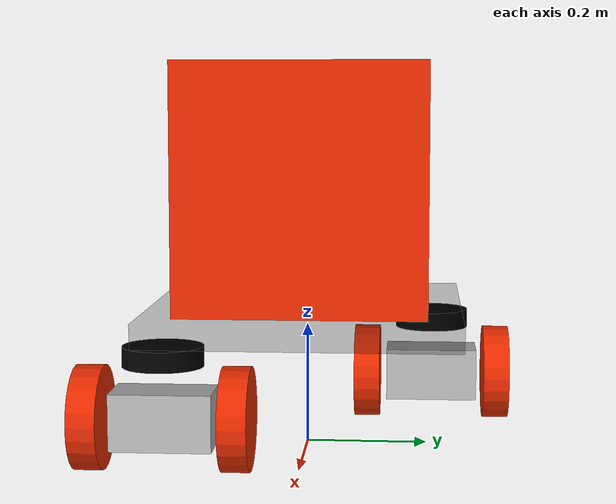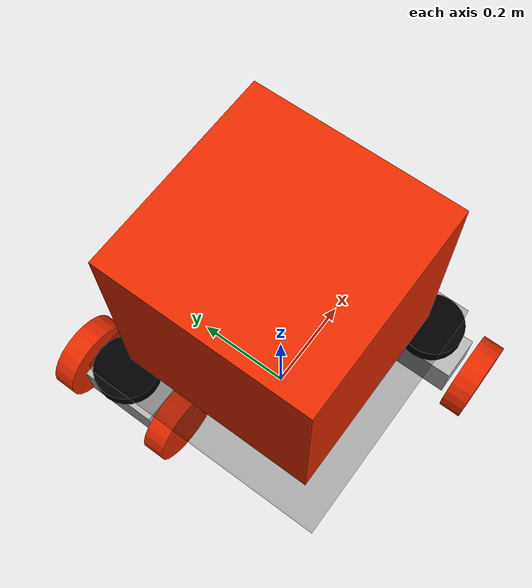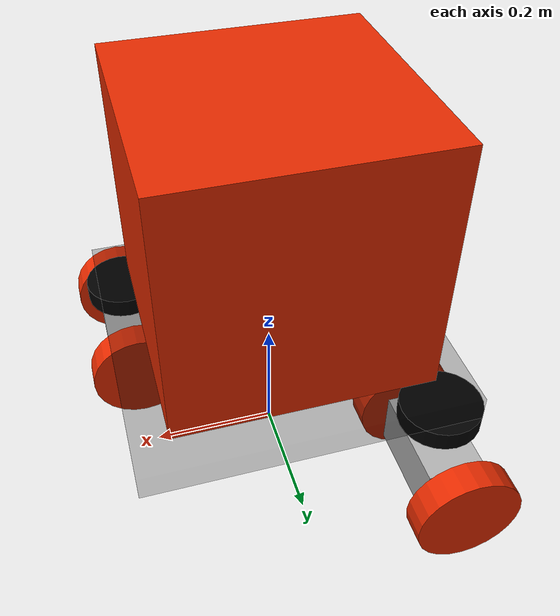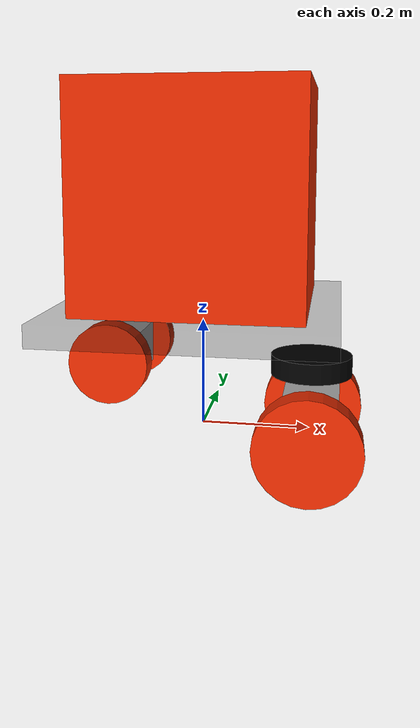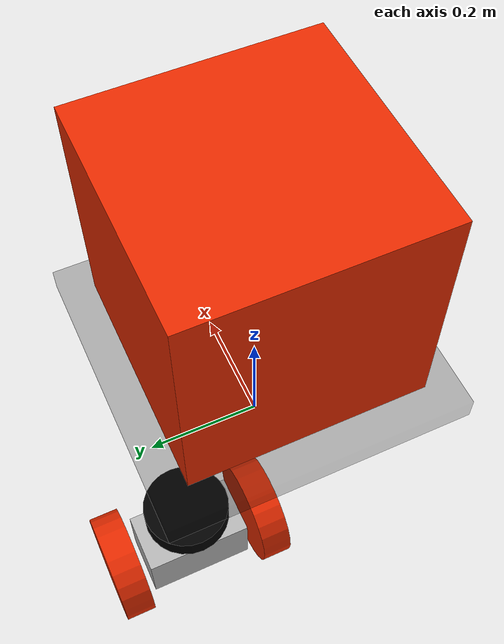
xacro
<?xml version="1.0"?>
<robot xmlns:xacro="http://www.ros.org/wiki/xacro" name="amr">
  <xacro:arg name="name" default="amr"/>
  <xacro:arg name="namespace" default=""/>
  <xacro:arg name="prefix" default=""/>
  <xacro:arg name="serial_port" default="/dev/ttyACM0"/>
  <xacro:arg name="baudrate" default="115200"/>
  <xacro:arg name="command_timeout_ms" default="500"/>
  <xacro:arg name="active_modules" default="FR,RL"/>

  <xacro:include filename="$(find wheelbot_serial_bridge)/urdf/swerve_2bot_serial_macro.xacro"/>
  <xacro:arg name="position_Z" default="${str(2*wheel_radius + base_height/2 + rulment_axial_height)}"/>

  <xacro:wheelbot_serial_mobile_robot
    namespace="$(arg namespace)"
    prefix="$(arg prefix)"
    position_Z="$(arg position_Z)"
    serial_port="$(arg serial_port)"
    baudrate="$(arg baudrate)"
    command_timeout_ms="$(arg command_timeout_ms)"
    active_modules="$(arg active_modules)"
  />
</robot>

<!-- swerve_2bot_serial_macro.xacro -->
<robot xmlns:xacro="http://www.ros.org/wiki/xacro" name="amr">
  <xacro:arg name="name" default="amr"/>

  <xacro:include filename="$(find description_mobile)/meshes/materials.xacro"/>
  <xacro:include filename="$(find description_mobile)/urdf/properties/properties_swerveBOT_510.urdf.xacro"/>
  <xacro:include filename="$(find description_mobile)/urdf/mech/chassis.urdf.xacro"/>
  <xacro:include filename="$(find wheelbot_serial_bridge)/urdf/serial_diff_drive_module.urdf.xacro"/>
  <xacro:include filename="$(find description_mobile)/urdf/mech/virtual_swerve_module.urdf.xacro"/>
  <xacro:include filename="$(find description_mobile)/urdf/mech/rear_wheels.urdf.xacro"/>
  <xacro:include filename="$(find wheelbot_serial_bridge)/ros2_control/wheelbot_serial_swerve_2bot.ros2_control.xacro"/>

  <xacro:macro name="wheelbot_serial_mobile_robot" params="
      namespace
      prefix
      position_Z
      serial_port
      baudrate
      command_timeout_ms
      active_modules">

    <link name="base_footprint"/>

    <xacro:chassis
      prefix="${prefix}"
      parent="base_footprint"
      pos_z="${str(2*wheel_radius + base_height/2 + rulment_axial_height)}"
    />

    <xacro:virtual_swerve_module
      prefix="${prefix}"
      parent="chassis_link"
      pos_x="${str(wheelbase/2)}"
      pos_y="${str(wheel_track/2)}"
      pos_z="${position_Z}"
    />

    <xacro:serial_diff_drive_module
      namespace="${namespace}"
      prefix="${prefix}"
      name="diffBOT_FR"
      parent="chassis_link"
      drive_pos="FR_"
      steering_pos="virtual_front_right">
      <origin xyz="${wheelbase/2} -${wheel_track/2} -${base_height/2 + rulment_axial_height/2}" rpy="0 0 0"/>
    </xacro:serial_diff_drive_module>

    <xacro:serial_diff_drive_module
      namespace="${namespace}"
      prefix="${prefix}"
      name="diffBOT_RL"
      parent="chassis_link"
      drive_pos="RL_"
      steering_pos="virtual_rear_left"
      steering_mimic_offset="-${PI}">
      <origin xyz="-${wheelbase/2} ${wheel_track/2} -${base_height/2 + rulment_axial_height/2}" rpy="0 0 ${PI}"/>
    </xacro:serial_diff_drive_module>

    <xacro:wheelbot_serial_swerve_2bot_ros2_control
      name="$(arg name)"
      prefix="${prefix}"
      serial_port="${serial_port}"
      baudrate="${baudrate}"
      command_timeout_ms="${command_timeout_ms}"
      active_modules="${active_modules}"
      wheel_radius="${wheel_radius}"
      wheel_drive_len="0.23"
    />
  </xacro:macro>
</robot>

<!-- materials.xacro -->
<robot name="tricycle" xmlns:xacro="http://www.ros.org/wiki/xacro" >

<material name="Aluminium">
  <color rgba="0.700 0.700 0.700 1.000"/>
</material>

<material name="PETG_orange">
  <color rgba="0.9 0.165 0.000 1.000"/>
</material>

<material name="Rubber">
  <color rgba="0 0 0 1.000"/>
</material>

<material name="invisible">
  <color rgba="0.0 0.0 0.0 0.0"/>
</material>

<material name="transparent">
  <color rgba="0.0 0.0 0.0 0.25"/>
</material>

</robot>

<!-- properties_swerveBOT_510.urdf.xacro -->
<robot xmlns:xacro="http://ros.org/wiki/xacro">

  <xacro:property name="PI" value="3.1415926535897931"/>
  <xacro:property name="base_length" value="0.510" />
  <xacro:property name="base_width" value="0.510" />
  <xacro:property name="base_height" value="0.04" />
  <xacro:property name="base_mass" value="5" />

  <xacro:property name="stand_length" value="0.400" />
  <xacro:property name="stand_width" value="0.400" />
  <xacro:property name="stand_height" value="0.400" />

  <xacro:property name="wheel_radius" value="0.0825" />
  <xacro:property name="wheel_len" value="0.045" />
  <xacro:property name="wheel_drive_len" value="0.230" />
  <xacro:property name="wheel_mass" value="0.3" />

  <xacro:property name="rulment_axial_diametru" value="0.064" />
  <xacro:property name="rulment_axial_height" value="0.032" />

  <!-- Constants for robot dimensions -->
   <xacro:property name="wheelbase" value="0.420" />
   <xacro:property name="wheel_track"  value="0.420" />

</robot>

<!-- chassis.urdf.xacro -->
<robot xmlns:xacro="http://wiki.ros.org/xacro">

    <xacro:macro name="chassis" params="
        prefix parent
        pos_z"
    >

     <link name="${prefix}chassis_link">
        <collision>
            <origin xyz="0 0 0" rpy="0 0 0"/>
            <geometry>
                <box size="${base_length} ${base_width} ${base_height}"/>
            </geometry>
        </collision>
        <visual>
            <origin xyz="0 0 0" rpy="0 0 0"/>
            <geometry>
                <box size="${base_length} ${base_width} ${base_height}"/>
            </geometry>
            <material name="transparent"/>
        </visual>
        <inertial>
            <origin xyz="0 0 0" rpy="0 0 0"/>
            <mass value="${base_mass}"/>
            <inertia
                ixx="0.000270" ixy="0.0" ixz="0.0"
                iyy="0.000270" iyz="0.0"
                izz="0.000426"/>
            </inertial>
     </link>

     <link name="${prefix}ur_stand_link">
        <collision>
            <origin xyz="0 0 0" rpy="0 0 0"/>
            <geometry>
                <box size="0.40 0.40 0.40"/>
            </geometry>
        </collision>
        <visual>
            <origin xyz="0 0 0" rpy="0 0 0"/>
            <geometry>
                <box size="0.40 0.40 0.40"/>
            </geometry>
            <material name="PETG_orange"/>
        </visual>

        <inertial>
            <origin xyz="0 0 0" rpy="0 0 0"/>
            <mass value="${base_mass}"/>
            <inertia
                ixx="0.000270" ixy="0.0" ixz="0.0"
                iyy="0.000270" iyz="0.0"
                izz="0.000426"/>
            </inertial>
     </link>

     <joint name="${prefix}chassis_joint" type="fixed">
        <parent link="${prefix}${parent}"/>
        <child link="${prefix}chassis_link"/>
        <origin xyz="0 0 ${pos_z}" rpy="0 0 0"/>
        <axis xyz="0 0 1"/>
        <dynamics damping="0.2"/>
     </joint>

     <joint name="${prefix}ur_stand_joint" type="fixed">
        <parent link="${prefix}chassis_link"/>
        <child link="${prefix}ur_stand_link"/>
        <origin xyz="0 0 ${str(base_height/2 + 0.20)}" rpy="0 0 0"/>
        <axis xyz="0 0 1"/>
        <dynamics damping="0.2"/>
     </joint>

    </xacro:macro>
</robot>

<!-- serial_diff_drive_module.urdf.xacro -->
<robot xmlns:xacro="http://ros.org/wiki/xacro">

  <xacro:macro name="serial_diff_drive_module" params="
      prefix name parent *origin
      drive_pos steering_pos namespace
      steering_mimic_offset:=0.0">

    <link name="${prefix}${drive_pos}steering_link">
      <visual>
        <origin xyz="0 0 0" rpy="0 0 0"/>
        <geometry>
          <cylinder length="${rulment_axial_height}" radius="${rulment_axial_diametru}"/>
        </geometry>
        <material name="Rubber"/>
      </visual>
      <collision>
        <geometry>
          <cylinder length="${rulment_axial_height}" radius="${rulment_axial_diametru}"/>
        </geometry>
      </collision>
    </link>

    <joint name="${prefix}${drive_pos}steering_joint" type="revolute">
      <xacro:insert_block name="origin"/>
      <parent link="${parent}"/>
      <child link="${prefix}${drive_pos}steering_link"/>
      <axis xyz="0 0 1"/>
      <limit lower="-${PI}" upper="${PI}" effort="100.0" velocity="100.0"/>
      <dynamics damping="0.2"/>
    </joint>

    <link name="${prefix}${drive_pos}chassis_2_link">
      <collision>
        <origin xyz="0 0 0" rpy="0 0 0"/>
        <geometry>
          <box size="0.09 0.16 0.09"/>
        </geometry>
      </collision>
      <visual>
        <origin xyz="0 0 0" rpy="0 0 0"/>
        <geometry>
          <box size="0.09 0.16 0.09"/>
        </geometry>
        <material name="Aluminium"/>
      </visual>
      <inertial>
        <origin xyz="0 0 0" rpy="0 0 0"/>
        <mass value="${base_mass}"/>
        <inertia
          ixx="0.000270" ixy="0.0" ixz="0.0"
          iyy="0.000270" iyz="0.0"
          izz="0.000426"/>
      </inertial>
    </link>

    <joint name="${prefix}${drive_pos}chassis_2_joint" type="fixed">
      <origin xyz="0 0 -${rulment_axial_height/2 + wheel_radius}" rpy="0 0 0"/>
      <parent link="${prefix}${drive_pos}steering_link"/>
      <child link="${prefix}${drive_pos}chassis_2_link"/>
    </joint>

    <link name="${prefix}${drive_pos}wheel_drive_left">
      <collision>
        <origin xyz="0 0 0" rpy="${PI/2} 0 0"/>
        <geometry>
          <cylinder length="${wheel_len}" radius="${wheel_radius}"/>
        </geometry>
      </collision>
      <visual>
        <origin xyz="0 0 0" rpy="${PI/2} 0 ${PI/2}"/>
        <geometry>
          <cylinder length="${wheel_len}" radius="${wheel_radius}"/>
        </geometry>
        <material name="PETG_orange"/>
      </visual>
      <inertial>
        <origin xyz="0 0 0" rpy="${PI/2} 0 ${PI/2}"/>
        <mass value="${wheel_mass}"/>
        <inertia
          ixx="${(2/5) * wheel_mass * (wheel_radius * wheel_radius)}"
          ixy="0" ixz="0"
          iyy="${(2/5) * wheel_mass * (wheel_radius * wheel_radius)}"
          iyz="0"
          izz="${(2/5) * wheel_mass * (wheel_radius * wheel_radius)}"/>
      </inertial>
    </link>

    <joint name="${prefix}${drive_pos}drive_left_joint" type="continuous">
      <origin xyz="0 ${wheel_drive_len/2} 0" rpy="0 0 ${PI/2}"/>
      <parent link="${prefix}${drive_pos}chassis_2_link"/>
      <child link="${prefix}${drive_pos}wheel_drive_left"/>
      <axis xyz="1 0 0"/>
      <limit effort="100.0" velocity="100.0"/>
      <dynamics damping="0.2"/>
    </joint>

    <link name="${prefix}${drive_pos}wheel_drive_right">
      <collision>
        <origin xyz="0 0 0" rpy="${PI/2} 0 0"/>
        <geometry>
          <cylinder length="${wheel_len}" radius="${wheel_radius}"/>
        </geometry>
      </collision>
      <visual>
        <origin xyz="0 0 0" rpy="${PI/2} 0 ${PI/2}"/>
        <geometry>
          <cylinder length="${wheel_len}" radius="${wheel_radius}"/>
        </geometry>
        <material name="PETG_orange"/>
      </visual>
      <inertial>
        <origin xyz="0 0 0" rpy="${PI/2} 0 ${PI/2}"/>
        <mass value="${wheel_mass}"/>
        <inertia
          ixx="${(2/5) * wheel_mass * (wheel_radius * wheel_radius)}"
          ixy="0" ixz="0"
          iyy="${(2/5) * wheel_mass * (wheel_radius * wheel_radius)}"
          iyz="0"
          izz="${(2/5) * wheel_mass * (wheel_radius * wheel_radius)}"/>
      </inertial>
    </link>

    <joint name="${prefix}${drive_pos}drive_right_joint" type="continuous">
      <origin xyz="0 -${wheel_drive_len/2} 0" rpy="0 0 ${PI/2}"/>
      <parent link="${prefix}${drive_pos}chassis_2_link"/>
      <child link="${prefix}${drive_pos}wheel_drive_right"/>
      <axis xyz="1 0 0"/>
      <limit effort="100.0" velocity="100.0"/>
      <dynamics damping="0.2"/>
    </joint>
  </xacro:macro>
</robot>

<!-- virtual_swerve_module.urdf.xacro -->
<robot xmlns:xacro="http://ros.org/wiki/xacro">

  <xacro:macro name="virtual_swerve_module" params="
        prefix parent
        pos_x pos_y pos_z"
    >

    <!--********************************************* STEERING *****************************************************************   -->

    <!-- virtual front right steering -->
    <link name="${prefix}virtual_front_right_steering_link">
    </link>

    <joint name="${prefix}virtual_front_right_steering_joint" type="revolute">
      <parent link="${parent}"/>
      <child link="${prefix}virtual_front_right_steering_link"/>
      <origin xyz="${pos_x} -${pos_y} ${pos_z}" rpy="0 0 0"/>
      <axis xyz="0 0 1"/>
      <limit lower="-${PI}" upper="${PI}" effort="100.0" velocity="100.0"/>
    </joint>

    <!-- virtual rear left steering -->
    <link name="${prefix}virtual_rear_left_steering_link">
    </link>

    <joint name="${prefix}virtual_rear_left_steering_joint" type="revolute">
      <parent link="${parent}"/>
      <child link="${prefix}virtual_rear_left_steering_link"/>
      <origin xyz="-${pos_x} ${pos_y} ${pos_z}" rpy="0 0 0"/>
      <axis xyz="0 0 1"/>
      <limit lower="-${PI}" upper="${PI}" effort="100.0" velocity="100.0"/>
    </joint>

    <!-- virtual rear right steering -->
    <link name="${prefix}virtual_rear_right_steering_link">
    </link>

    <joint name="${prefix}virtual_rear_right_steering_joint" type="revolute">
      <parent link="${parent}"/>
      <child link="${prefix}virtual_rear_right_steering_link"/>
      <origin xyz="-${pos_x} -${pos_y} ${pos_z}" rpy="0 0 0"/>
      <axis xyz="0 0 1"/>
      <limit lower="-${PI}" upper="${PI}" effort="100.0" velocity="100.0"/>
    </joint>

    <!-- virtual front left steering -->
    <link name="${prefix}virtual_front_left_steering_link">
    </link>

    <joint name="${prefix}virtual_front_left_steering_joint" type="revolute">
      <parent link="${parent}"/>
      <child link="${prefix}virtual_front_left_steering_link"/>
      <origin xyz="${pos_x} ${pos_y} ${pos_z}" rpy="0 0 0"/>
      <axis xyz="0 0 1"/>
      <limit lower="-${PI}" upper="${PI}" effort="100.0" velocity="100.0"/>
    </joint>

    <!--********************************************* TRACTION *****************************************************************   -->

    <!-- virtual front right wheel -->
    <link name="${prefix}virtual_front_right_wheel_link">
    </link>

    <joint name="${prefix}virtual_front_right_wheel_joint" type="continuous">
      <parent link="${prefix}virtual_front_right_steering_link"/>
      <child link="${prefix}virtual_front_right_wheel_link"/>
      <origin xyz="0 0 0" rpy="0 0 0"/>
      <axis xyz="0 1 0"/>
    </joint>

    <!-- virtual rear left wheel RL -->
    <link name="${prefix}virtual_rear_left_wheel_link">
    </link>

    <joint name="${prefix}virtual_rear_left_wheel_joint" type="continuous">
      <parent link="${prefix}virtual_rear_left_steering_link"/>
      <child link="${prefix}virtual_rear_left_wheel_link"/>
      <origin xyz="0 0 0" rpy="0 0 0"/>
      <axis xyz="0 1 0"/>
    </joint>

    <!-- virtual rear right wheel RR -->
    <link name="${prefix}virtual_rear_right_wheel_link">
    </link>

    <joint name="${prefix}virtual_rear_right_wheel_joint" type="continuous">
      <parent link="${prefix}virtual_rear_right_steering_link"/>
      <child link="${prefix}virtual_rear_right_wheel_link"/>
      <origin xyz="0 0 0" rpy="0 0 0"/>
      <axis xyz="0 1 0"/>
    </joint>

    <!-- virtual front left wheel -->
    <link name="${prefix}virtual_front_left_wheel_link">
    </link>

    <joint name="${prefix}virtual_front_left_wheel_joint" type="continuous">
      <parent link="${prefix}virtual_front_left_steering_link"/>
      <child link="${prefix}virtual_front_left_wheel_link"/>
      <origin xyz="0 0 0" rpy="0 0 0"/>
      <axis xyz="0 1 0"/>
    </joint>

  </xacro:macro>

</robot>
